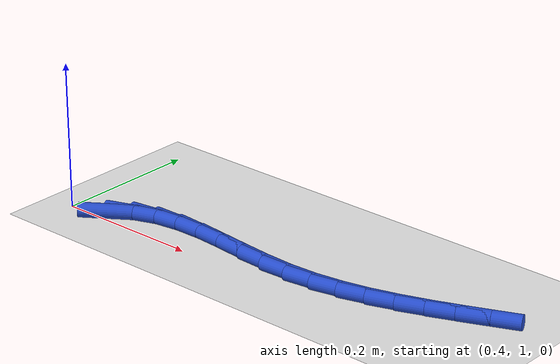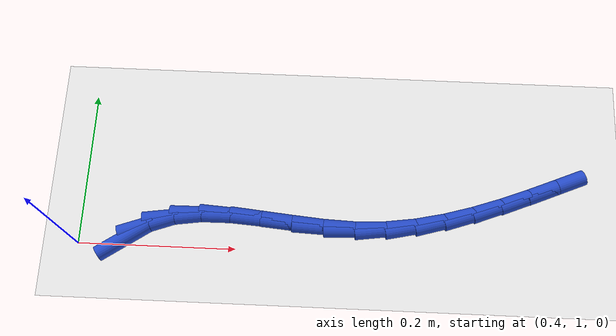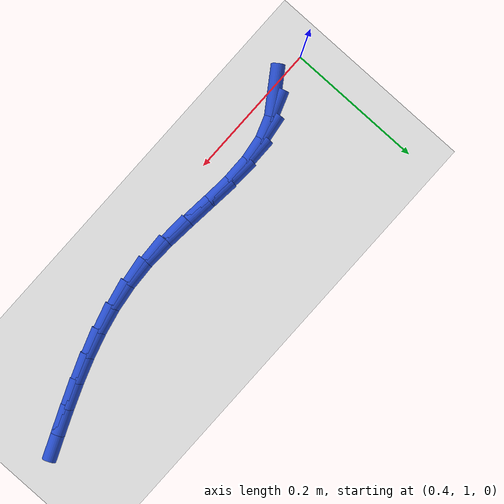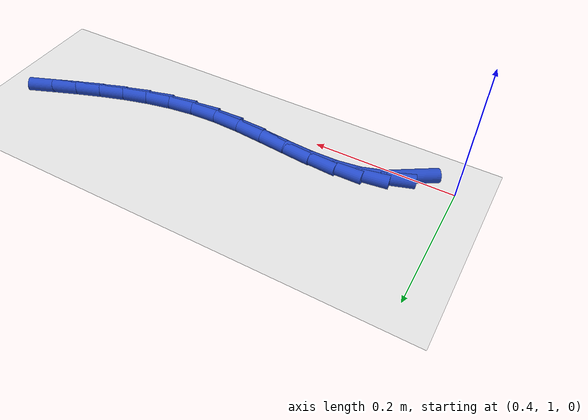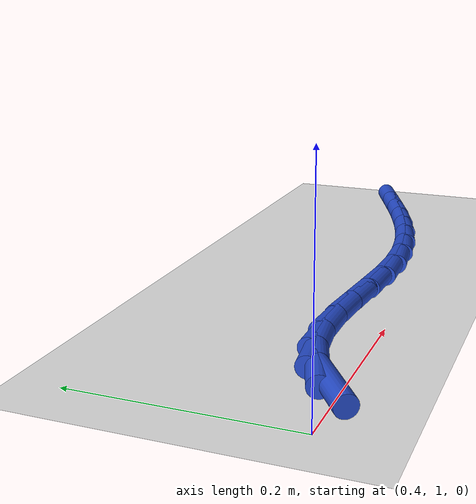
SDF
<sdf version="1.6">
 <world name="default">
  <model name="ground_plane">
   <static>1</static>
   <link name="link">
    <collision name="collision">
     <geometry><plane><normal>0 0 1</normal><size>100 100</size></plane></geometry>
     <surface><friction><ode><mu>100</mu><mu2>50</mu2></ode></friction></surface>
    </collision>
    <visual name="visual">
     <cast_shadows>0</cast_shadows>
     <geometry><plane><normal>0 0 1</normal><size>100 100</size></plane></geometry>
     <material>
      <script><uri>file://media/materials/scripts/gazebo.material</uri><name>Gazebo/WhiteGlow</name></script>
     </material>
    </visual>
   </link>
  </model>
  <model name="line">
   <link name="link_30">
    <pose>0.4619339455102066 1.0069170527673887 0.01 0 1.57 0.599223776304519</pose>
    <collision name="collision">
     <geometry><cylinder><radius>0.01</radius><length>0.08</length></cylinder></geometry>
    </collision>
    <visual name="visual">
     <material>
      <script><name>Gazebo/Blue</name><uri>file://media/materials/scripts/gazebo.material</uri></script>
     </material>
     <geometry><cylinder><radius>0.01</radius><length>0.08</length></cylinder></geometry>
    </visual>
   </link>
   <link name="link_31">
    <pose>0.48924369632827963 1.0255695547623456 0.01 0 1.57 0.34449556823501687</pose>
    <collision name="collision">
     <geometry><cylinder><radius>0.01</radius><length>0.08</length></cylinder></geometry>
    </collision>
    <visual name="visual">
     <material>
      <script><name>Gazebo/Blue</name><uri>file://media/materials/scripts/gazebo.material</uri></script>
     </material>
     <geometry><cylinder><radius>0.01</radius><length>0.08</length></cylinder></geometry>
    </visual>
   </link>
   <link name="link_32">
    <pose>0.5203591781723657 1.0367338850592747 0.01 0 1.57 0.1416656107038731</pose>
    <collision name="collision">
     <geometry><cylinder><radius>0.01</radius><length>0.08</length></cylinder></geometry>
    </collision>
    <visual name="visual">
     <material>
      <script><name>Gazebo/Blue</name><uri>file://media/materials/scripts/gazebo.material</uri></script>
     </material>
     <geometry><cylinder><radius>0.01</radius><length>0.08</length></cylinder></geometry>
    </visual>
   </link>
   <link name="link_33">
    <pose>0.554754718013593 1.0416394107765536 0.01 0 1.57 0.008150989017048915</pose>
    <collision name="collision">
     <geometry><cylinder><radius>0.01</radius><length>0.08</length></cylinder></geometry>
    </collision>
    <visual name="visual">
     <material>
      <script><name>Gazebo/Blue</name><uri>file://media/materials/scripts/gazebo.material</uri></script>
     </material>
     <geometry><cylinder><radius>0.01</radius><length>0.08</length></cylinder></geometry>
    </visual>
   </link>
   <link name="link_34">
    <pose>0.5917006942937225 1.0419405636928616 0.01 0 1.57 -0.06822018546219824</pose>
    <collision name="collision">
     <geometry><cylinder><radius>0.01</radius><length>0.08</length></cylinder></geometry>
    </collision>
    <visual name="visual">
     <material>
      <script><name>Gazebo/Blue</name><uri>file://media/materials/scripts/gazebo.material</uri></script>
     </material>
     <geometry><cylinder><radius>0.01</radius><length>0.08</length></cylinder></geometry>
    </visual>
   </link>
   <link name="link_35">
    <pose>0.6304674854545147 1.0392917755868796 0.01 0 1.57 -0.09863763149952001</pose>
    <collision name="collision">
     <geometry><cylinder><radius>0.01</radius><length>0.08</length></cylinder></geometry>
    </collision>
    <visual name="visual">
     <material>
      <script><name>Gazebo/Blue</name><uri>file://media/materials/scripts/gazebo.material</uri></script>
     </material>
     <geometry><cylinder><radius>0.01</radius><length>0.08</length></cylinder></geometry>
    </visual>
   </link>
   <link name="link_36">
    <pose>0.6703254699377308 1.0353474782372865 0.01 0 1.57 -0.08891004050234656</pose>
    <collision name="collision">
     <geometry><cylinder><radius>0.01</radius><length>0.08</length></cylinder></geometry>
    </collision>
    <visual name="visual">
     <material>
      <script><name>Gazebo/Blue</name><uri>file://media/materials/scripts/gazebo.material</uri></script>
     </material>
     <geometry><cylinder><radius>0.01</radius><length>0.08</length></cylinder></geometry>
    </visual>
   </link>
   <link name="link_37">
    <pose>0.7105450261851314 1.0317621034227638 0.01 0 1.57 -0.03942651141357657</pose>
    <collision name="collision">
     <geometry><cylinder><radius>0.01</radius><length>0.08</length></cylinder></geometry>
    </collision>
    <visual name="visual">
     <material>
      <script><name>Gazebo/Blue</name><uri>file://media/materials/scripts/gazebo.material</uri></script>
     </material>
     <geometry><cylinder><radius>0.01</radius><length>0.08</length></cylinder></geometry>
    </visual>
   </link>
   <link name="link_38">
    <pose>0.7503965326384775 1.0301900829219903 0.01 0 1.57 0.04745717436360032</pose>
    <collision name="collision">
     <geometry><cylinder><radius>0.01</radius><length>0.08</length></cylinder></geometry>
    </collision>
    <visual name="visual">
     <material>
      <script><name>Gazebo/Blue</name><uri>file://media/materials/scripts/gazebo.material</uri></script>
     </material>
     <geometry><cylinder><radius>0.01</radius><length>0.08</length></cylinder></geometry>
    </visual>
   </link>
   <link name="link_39">
    <pose>0.7892511844399216 1.032035400446579 0.01 0 1.57 0.1378227707298543</pose>
    <collision name="collision">
     <geometry><cylinder><radius>0.01</radius><length>0.08</length></cylinder></geometry>
    </collision>
    <visual name="visual">
     <material>
      <script><name>Gazebo/Blue</name><uri>file://media/materials/scripts/gazebo.material</uri></script>
     </material>
     <geometry><cylinder><radius>0.01</radius><length>0.08</length></cylinder></geometry>
    </visual>
   </link>
   <link name="link_40">
    <pose>0.8270531695498331 1.0372786153825326 0.01 0 1.57 0.21661271451964845</pose>
    <collision name="collision">
     <geometry><cylinder><radius>0.01</radius><length>0.08</length></cylinder></geometry>
    </collision>
    <visual name="visual">
     <material>
      <script><name>Gazebo/Blue</name><uri>file://media/materials/scripts/gazebo.material</uri></script>
     </material>
     <geometry><cylinder><radius>0.01</radius><length>0.08</length></cylinder></geometry>
    </visual>
   </link>
   <link name="link_41">
    <pose>0.8639488384059547 1.045398076653747 0.01 0 1.57 0.2821059720336501</pose>
    <collision name="collision">
     <geometry><cylinder><radius>0.01</radius><length>0.08</length></cylinder></geometry>
    </collision>
    <visual name="visual">
     <material>
      <script><name>Gazebo/Blue</name><uri>file://media/materials/scripts/gazebo.material</uri></script>
     </material>
     <geometry><cylinder><radius>0.01</radius><length>0.08</length></cylinder></geometry>
    </visual>
   </link>
   <link name="link_42">
    <pose>0.9000847704980969 1.055871564174742 0.01 0 1.57 0.333469239236096</pose>
    <collision name="collision">
     <geometry><cylinder><radius>0.01</radius><length>0.08</length></cylinder></geometry>
    </collision>
    <visual name="visual">
     <material>
      <script><name>Gazebo/Blue</name><uri>file://media/materials/scripts/gazebo.material</uri></script>
     </material>
     <geometry><cylinder><radius>0.01</radius><length>0.08</length></cylinder></geometry>
    </visual>
   </link>
   <link name="link_43">
    <pose>0.9356075453160714 1.068176857860039 0.01 0 1.57 0.3704430767512039</pose>
    <collision name="collision">
     <geometry><cylinder><radius>0.01</radius><length>0.08</length></cylinder></geometry>
    </collision>
    <visual name="visual">
     <material>
      <script><name>Gazebo/Blue</name><uri>file://media/materials/scripts/gazebo.material</uri></script>
     </material>
     <geometry><cylinder><radius>0.01</radius><length>0.08</length></cylinder></geometry>
    </visual>
   </link>
   <link name="link_44">
    <pose>0.9706637423496896 1.081791737624158 0.01 0 1.57 0.39304405741044196</pose>
    <collision name="collision">
     <geometry><cylinder><radius>0.01</radius><length>0.08</length></cylinder></geometry>
    </collision>
    <visual name="visual">
     <material>
      <script><name>Gazebo/Blue</name><uri>file://media/materials/scripts/gazebo.material</uri></script>
     </material>
     <geometry><cylinder><radius>0.01</radius><length>0.08</length></cylinder></geometry>
    </visual>
   </link>
   <link name="link_45">
    <pose>1.0053999410887617 1.0961939833816188 0.01 0 1.57 0.40133653675243447</pose>
    <collision name="collision">
     <geometry><cylinder><radius>0.01</radius><length>0.08</length></cylinder></geometry>
    </collision>
    <visual name="visual">
     <material>
      <script><name>Gazebo/Blue</name><uri>file://media/materials/scripts/gazebo.material</uri></script>
     </material>
     <geometry><cylinder><radius>0.01</radius><length>0.08</length></cylinder></geometry>
    </visual>
   </link>
  </model>
 </world>
</sdf>
